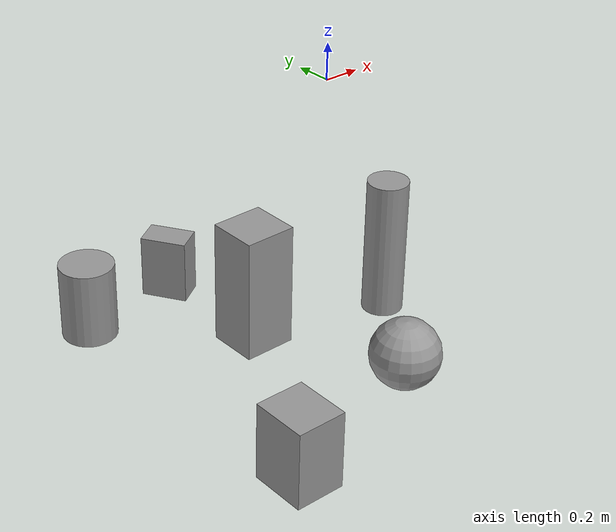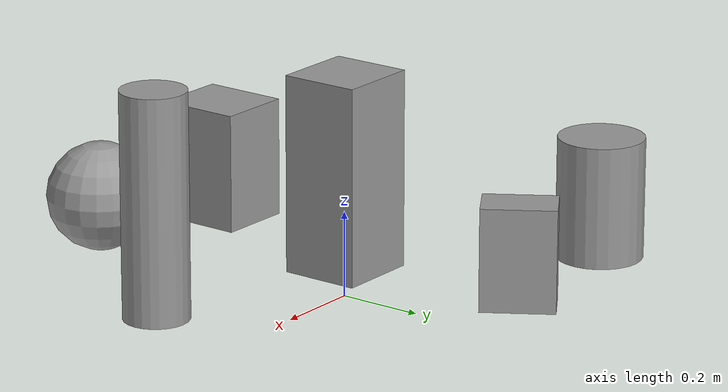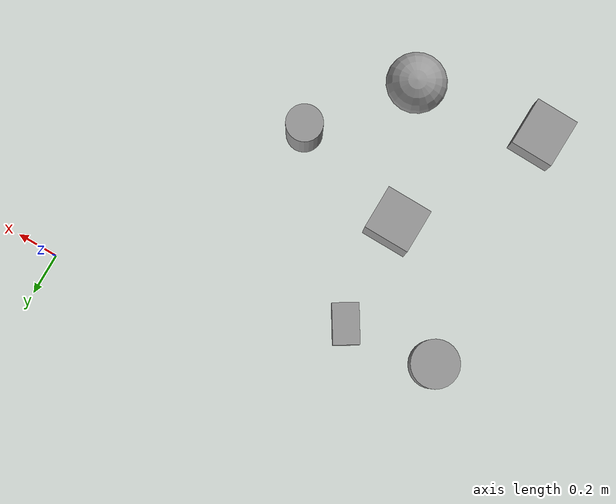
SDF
<?xml version='1.0'?>
<sdf version='1.7'>
  <model name='obstacles'>
    <link name='link'>
      <inertial>
        <mass>1</mass>
        <inertia>
          <ixx>0.166667</ixx>
          <ixy>0</ixy>
          <ixz>0</ixz>
          <iyy>0.166667</iyy>
          <iyz>0</iyz>
          <izz>0.166667</izz>
        </inertia>
        <pose>0 0 0 0 -0 0</pose>
      </inertial>
      <self_collide>0</self_collide>
      <enable_wind>0</enable_wind>
      <kinematic>0</kinematic>
      <pose>-1.33179 -0.434126 -0.357736 0 -0 0.564849</pose>
      <gravity>1</gravity>
      <visual name='visual'>
        <geometry>
          <box>
            <size>0.130992 0.203212 0.284528</size>
          </box>
        </geometry>
        <material>
          <script>
            <name>Gazebo/Grey</name>
            <uri>file://media/materials/scripts/gazebo.material</uri>
          </script>
          <shader type='pixel'>
            <normal_map>__default__</normal_map>
          </shader>
          <ambient>0.3 0.3 0.3 1</ambient>
          <diffuse>0.7 0.7 0.7 1</diffuse>
          <specular>0.01 0.01 0.01 1</specular>
          <emissive>0 0 0 1</emissive>
        </material>
        <pose>0 0 0 0 -0 0</pose>
        <transparency>0</transparency>
        <cast_shadows>1</cast_shadows>
      </visual>
      <collision name='collision'>
        <laser_retro>0</laser_retro>
        <max_contacts>10</max_contacts>
        <pose>0 0 0 0 -0 0</pose>
        <geometry>
          <box>
            <size>0.130992 0.203212 0.284528</size>
          </box>
        </geometry>
        <surface>
          <friction>
            <ode>
              <mu>1</mu>
              <mu2>1</mu2>
              <fdir1>0 0 0</fdir1>
              <slip1>0</slip1>
              <slip2>0</slip2>
            </ode>
            <torsional>
              <coefficient>1</coefficient>
              <patch_radius>0</patch_radius>
              <surface_radius>0</surface_radius>
              <use_patch_radius>1</use_patch_radius>
              <ode>
                <slip>0</slip>
              </ode>
            </torsional>
          </friction>
          <bounce>
            <restitution_coefficient>0</restitution_coefficient>
            <threshold>1e+06</threshold>
          </bounce>
          <contact>
            <collide_without_contact>0</collide_without_contact>
            <collide_without_contact_bitmask>1</collide_without_contact_bitmask>
            <collide_bitmask>1</collide_bitmask>
            <ode>
              <soft_cfm>0</soft_cfm>
              <soft_erp>0.2</soft_erp>
              <kp>1e+13</kp>
              <kd>1</kd>
              <max_vel>0.01</max_vel>
              <min_depth>0</min_depth>
            </ode>
            <bullet>
              <split_impulse>1</split_impulse>
              <split_impulse_penetration_threshold>-0.01</split_impulse_penetration_threshold>
              <soft_cfm>0</soft_cfm>
              <soft_erp>0.2</soft_erp>
              <kp>1e+13</kp>
              <kd>1</kd>
            </bullet>
          </contact>
        </surface>
      </collision>
    </link>
    <link name='link_2'>
      <inertial>
        <mass>1</mass>
        <inertia>
          <ixx>0.145833</ixx>
          <ixy>0</ixy>
          <ixz>0</ixz>
          <iyy>0.145833</iyy>
          <iyz>0</iyz>
          <izz>0.125</izz>
        </inertia>
        <pose>0 0 0 0 -0 0</pose>
      </inertial>
      <pose>-1.79426 -0.486175 -0.33 0 -0 0</pose>
      <gravity>1</gravity>
      <self_collide>0</self_collide>
      <kinematic>0</kinematic>
      <enable_wind>0</enable_wind>
      <visual name='visual'>
        <pose>0 0 0 0 -0 0</pose>
        <geometry>
          <cylinder>
            <radius>0.12</radius>
            <length>0.34</length>
          </cylinder>
        </geometry>
        <material>
          <lighting>1</lighting>
          <script>
            <uri>file://media/materials/scripts/gazebo.material</uri>
            <name>Gazebo/Grey</name>
          </script>
          <shader type='pixel'>
            <normal_map>__default__</normal_map>
          </shader>
          <ambient>0.3 0.3 0.3 1</ambient>
          <diffuse>0.7 0.7 0.7 1</diffuse>
          <specular>0.01 0.01 0.01 1</specular>
          <emissive>0 0 0 1</emissive>
        </material>
        <transparency>0</transparency>
        <cast_shadows>1</cast_shadows>
      </visual>
      <collision name='collision'>
        <laser_retro>0</laser_retro>
        <max_contacts>10</max_contacts>
        <pose>0 0 0 0 -0 0</pose>
        <geometry>
          <cylinder>
            <radius>0.12</radius>
            <length>0.34</length>
          </cylinder>
        </geometry>
        <surface>
          <friction>
            <ode>
              <mu>1</mu>
              <mu2>1</mu2>
              <fdir1>0 0 0</fdir1>
              <slip1>0</slip1>
              <slip2>0</slip2>
            </ode>
            <torsional>
              <coefficient>1</coefficient>
              <patch_radius>0</patch_radius>
              <surface_radius>0</surface_radius>
              <use_patch_radius>1</use_patch_radius>
              <ode>
                <slip>0</slip>
              </ode>
            </torsional>
          </friction>
          <bounce>
            <restitution_coefficient>0</restitution_coefficient>
            <threshold>1e+06</threshold>
          </bounce>
          <contact>
            <collide_without_contact>0</collide_without_contact>
            <collide_without_contact_bitmask>1</collide_without_contact_bitmask>
            <collide_bitmask>1</collide_bitmask>
            <ode>
              <soft_cfm>0</soft_cfm>
              <soft_erp>0.2</soft_erp>
              <kp>1e+13</kp>
              <kd>1</kd>
              <max_vel>0.01</max_vel>
              <min_depth>0</min_depth>
            </ode>
            <bullet>
              <split_impulse>1</split_impulse>
              <split_impulse_penetration_threshold>-0.01</split_impulse_penetration_threshold>
              <soft_cfm>0</soft_cfm>
              <soft_erp>0.2</soft_erp>
              <kp>1e+13</kp>
              <kd>1</kd>
            </bullet>
          </contact>
        </surface>
      </collision>
    </link>
    <link name='link_3'>
      <inertial>
        <mass>1</mass>
        <inertia>
          <ixx>0.166667</ixx>
          <ixy>0</ixy>
          <ixz>0</ixz>
          <iyy>0.166667</iyy>
          <iyz>0</iyz>
          <izz>0.166667</izz>
        </inertia>
        <pose>0 0 0 0 -0 0</pose>
      </inertial>
      <pose>-1.28907 -0.972289 -0.224349 0 -0 0</pose>
      <gravity>1</gravity>
      <self_collide>0</self_collide>
      <kinematic>0</kinematic>
      <enable_wind>0</enable_wind>
      <visual name='visual'>
        <pose>0 0 0 0 -0 0</pose>
        <geometry>
          <box>
            <size>0.231874 0.221189 0.551301</size>
          </box>
        </geometry>
        <material>
          <lighting>1</lighting>
          <script>
            <uri>file://media/materials/scripts/gazebo.material</uri>
            <name>Gazebo/Grey</name>
          </script>
          <shader type='pixel'>
            <normal_map>__default__</normal_map>
          </shader>
          <ambient>0.3 0.3 0.3 1</ambient>
          <diffuse>0.7 0.7 0.7 1</diffuse>
          <specular>0.01 0.01 0.01 1</specular>
          <emissive>0 0 0 1</emissive>
        </material>
        <transparency>0</transparency>
        <cast_shadows>1</cast_shadows>
      </visual>
      <collision name='collision'>
        <laser_retro>0</laser_retro>
        <max_contacts>10</max_contacts>
        <pose>0 0 0 0 -0 0</pose>
        <geometry>
          <box>
            <size>0.231874 0.221189 0.551301</size>
          </box>
        </geometry>
        <surface>
          <friction>
            <ode>
              <mu>1</mu>
              <mu2>1</mu2>
              <fdir1>0 0 0</fdir1>
              <slip1>0</slip1>
              <slip2>0</slip2>
            </ode>
            <torsional>
              <coefficient>1</coefficient>
              <patch_radius>0</patch_radius>
              <surface_radius>0</surface_radius>
              <use_patch_radius>1</use_patch_radius>
              <ode>
                <slip>0</slip>
              </ode>
            </torsional>
          </friction>
          <bounce>
            <restitution_coefficient>0</restitution_coefficient>
            <threshold>1e+06</threshold>
          </bounce>
          <contact>
            <collide_without_contact>0</collide_without_contact>
            <collide_without_contact_bitmask>1</collide_without_contact_bitmask>
            <collide_bitmask>1</collide_bitmask>
            <ode>
              <soft_cfm>0</soft_cfm>
              <soft_erp>0.2</soft_erp>
              <kp>1e+13</kp>
              <kd>1</kd>
              <max_vel>0.01</max_vel>
              <min_depth>0</min_depth>
            </ode>
            <bullet>
              <split_impulse>1</split_impulse>
              <split_impulse_penetration_threshold>-0.01</split_impulse_penetration_threshold>
              <soft_cfm>0</soft_cfm>
              <soft_erp>0.2</soft_erp>
              <kp>1e+13</kp>
              <kd>1</kd>
            </bullet>
          </contact>
        </surface>
      </collision>
    </link>
    <link name='link_4'>
      <inertial>
        <mass>1</mass>
        <inertia>
          <ixx>0.145833</ixx>
          <ixy>0</ixy>
          <ixz>0</ixz>
          <iyy>0.145833</iyy>
          <iyz>0</iyz>
          <izz>0.125</izz>
        </inertia>
        <pose>0 0 0 0 -0 0</pose>
      </inertial>
      <pose>-0.683413 -1.1301 -0.19 0 -0 0</pose>
      <gravity>1</gravity>
      <self_collide>0</self_collide>
      <kinematic>0</kinematic>
      <enable_wind>0</enable_wind>
      <visual name='visual'>
        <pose>0 0 0 0 -0 0</pose>
        <geometry>
          <cylinder>
            <radius>0.09</radius>
            <length>0.62</length>
          </cylinder>
        </geometry>
        <material>
          <lighting>1</lighting>
          <script>
            <uri>file://media/materials/scripts/gazebo.material</uri>
            <name>Gazebo/Grey</name>
          </script>
          <shader type='pixel'>
            <normal_map>__default__</normal_map>
          </shader>
          <ambient>0.3 0.3 0.3 1</ambient>
          <diffuse>0.7 0.7 0.7 1</diffuse>
          <specular>0.01 0.01 0.01 1</specular>
          <emissive>0 0 0 1</emissive>
        </material>
        <transparency>0</transparency>
        <cast_shadows>1</cast_shadows>
      </visual>
      <collision name='collision'>
        <laser_retro>0</laser_retro>
        <max_contacts>10</max_contacts>
        <pose>0 0 0 0 -0 0</pose>
        <geometry>
          <cylinder>
            <radius>0.09</radius>
            <length>0.62</length>
          </cylinder>
        </geometry>
        <surface>
          <friction>
            <ode>
              <mu>1</mu>
              <mu2>1</mu2>
              <fdir1>0 0 0</fdir1>
              <slip1>0</slip1>
              <slip2>0</slip2>
            </ode>
            <torsional>
              <coefficient>1</coefficient>
              <patch_radius>0</patch_radius>
              <surface_radius>0</surface_radius>
              <use_patch_radius>1</use_patch_radius>
              <ode>
                <slip>0</slip>
              </ode>
            </torsional>
          </friction>
          <bounce>
            <restitution_coefficient>0</restitution_coefficient>
            <threshold>1e+06</threshold>
          </bounce>
          <contact>
            <collide_without_contact>0</collide_without_contact>
            <collide_without_contact_bitmask>1</collide_without_contact_bitmask>
            <collide_bitmask>1</collide_bitmask>
            <ode>
              <soft_cfm>0</soft_cfm>
              <soft_erp>0.2</soft_erp>
              <kp>1e+13</kp>
              <kd>1</kd>
              <max_vel>0.01</max_vel>
              <min_depth>0</min_depth>
            </ode>
            <bullet>
              <split_impulse>1</split_impulse>
              <split_impulse_penetration_threshold>-0.01</split_impulse_penetration_threshold>
              <soft_cfm>0</soft_cfm>
              <soft_erp>0.2</soft_erp>
              <kp>1e+13</kp>
              <kd>1</kd>
            </bullet>
          </contact>
        </surface>
      </collision>
    </link>
    <link name='link_5'>
      <inertial>
        <mass>1</mass>
        <inertia>
          <ixx>0.1</ixx>
          <ixy>0</ixy>
          <ixz>0</ixz>
          <iyy>0.1</iyy>
          <iyz>0</iyz>
          <izz>0.1</izz>
        </inertia>
        <pose>0 0 0 0 -0 0</pose>
      </inertial>
      <pose>-1.02848 -1.61152 -0.35 0 -0 0</pose>
      <gravity>1</gravity>
      <self_collide>0</self_collide>
      <kinematic>0</kinematic>
      <enable_wind>0</enable_wind>
      <visual name='visual'>
        <pose>0 0 0 0 -0 0</pose>
        <geometry>
          <sphere>
            <radius>0.15</radius>
          </sphere>
        </geometry>
        <material>
          <lighting>1</lighting>
          <script>
            <uri>file://media/materials/scripts/gazebo.material</uri>
            <name>Gazebo/Grey</name>
          </script>
          <shader type='pixel'>
            <normal_map>__default__</normal_map>
          </shader>
          <ambient>0.3 0.3 0.3 1</ambient>
          <diffuse>0.7 0.7 0.7 1</diffuse>
          <specular>0.01 0.01 0.01 1</specular>
          <emissive>0 0 0 1</emissive>
        </material>
        <transparency>0</transparency>
        <cast_shadows>1</cast_shadows>
      </visual>
      <collision name='collision'>
        <laser_retro>0</laser_retro>
        <max_contacts>10</max_contacts>
        <pose>0 0 0 0 -0 0</pose>
        <geometry>
          <sphere>
            <radius>0.15</radius>
          </sphere>
        </geometry>
        <surface>
          <friction>
            <ode>
              <mu>1</mu>
              <mu2>1</mu2>
              <fdir1>0 0 0</fdir1>
              <slip1>0</slip1>
              <slip2>0</slip2>
            </ode>
            <torsional>
              <coefficient>1</coefficient>
              <patch_radius>0</patch_radius>
              <surface_radius>0</surface_radius>
              <use_patch_radius>1</use_patch_radius>
              <ode>
                <slip>0</slip>
              </ode>
            </torsional>
          </friction>
          <bounce>
            <restitution_coefficient>0</restitution_coefficient>
            <threshold>1e+06</threshold>
          </bounce>
          <contact>
            <collide_without_contact>0</collide_without_contact>
            <collide_without_contact_bitmask>1</collide_without_contact_bitmask>
            <collide_bitmask>1</collide_bitmask>
            <ode>
              <soft_cfm>0</soft_cfm>
              <soft_erp>0.2</soft_erp>
              <kp>1e+13</kp>
              <kd>1</kd>
              <max_vel>0.01</max_vel>
              <min_depth>0</min_depth>
            </ode>
            <bullet>
              <split_impulse>1</split_impulse>
              <split_impulse_penetration_threshold>-0.01</split_impulse_penetration_threshold>
              <soft_cfm>0</soft_cfm>
              <soft_erp>0.2</soft_erp>
              <kp>1e+13</kp>
              <kd>1</kd>
            </bullet>
          </contact>
        </surface>
      </collision>
    </link>
    <link name='link_6'>
      <inertial>
        <mass>1</mass>
        <inertia>
          <ixx>0.166667</ixx>
          <ixy>0</ixy>
          <ixz>0</ixz>
          <iyy>0.166667</iyy>
          <iyz>0</iyz>
          <izz>0.166667</izz>
        </inertia>
        <pose>0 0 0 0 -0 0</pose>
      </inertial>
      <pose>-1.67923 -1.71215 -0.4268 0 -0 1.56162</pose>
      <gravity>1</gravity>
      <self_collide>0</self_collide>
      <kinematic>0</kinematic>
      <enable_wind>0</enable_wind>
      <visual name='visual'>
        <pose>0 0 0 0 -0 0</pose>
        <geometry>
          <box>
            <size>0.245846 0.219412 0.346399</size>
          </box>
        </geometry>
        <material>
          <lighting>1</lighting>
          <script>
            <uri>file://media/materials/scripts/gazebo.material</uri>
            <name>Gazebo/Grey</name>
          </script>
          <shader type='pixel'>
            <normal_map>__default__</normal_map>
          </shader>
          <ambient>0.3 0.3 0.3 1</ambient>
          <diffuse>0.7 0.7 0.7 1</diffuse>
          <specular>0.01 0.01 0.01 1</specular>
          <emissive>0 0 0 1</emissive>
        </material>
        <transparency>0</transparency>
        <cast_shadows>1</cast_shadows>
      </visual>
      <collision name='collision'>
        <laser_retro>0</laser_retro>
        <max_contacts>10</max_contacts>
        <pose>0 0 0 0 -0 0</pose>
        <geometry>
          <box>
            <size>0.245846 0.219412 0.346399</size>
          </box>
        </geometry>
        <surface>
          <friction>
            <ode>
              <mu>1</mu>
              <mu2>1</mu2>
              <fdir1>0 0 0</fdir1>
              <slip1>0</slip1>
              <slip2>0</slip2>
            </ode>
            <torsional>
              <coefficient>1</coefficient>
              <patch_radius>0</patch_radius>
              <surface_radius>0</surface_radius>
              <use_patch_radius>1</use_patch_radius>
              <ode>
                <slip>0</slip>
              </ode>
            </torsional>
          </friction>
          <bounce>
            <restitution_coefficient>0</restitution_coefficient>
            <threshold>1e+06</threshold>
          </bounce>
          <contact>
            <collide_without_contact>0</collide_without_contact>
            <collide_without_contact_bitmask>1</collide_without_contact_bitmask>
            <collide_bitmask>1</collide_bitmask>
            <ode>
              <soft_cfm>0</soft_cfm>
              <soft_erp>0.2</soft_erp>
              <kp>1e+13</kp>
              <kd>1</kd>
              <max_vel>0.01</max_vel>
              <min_depth>0</min_depth>
            </ode>
            <bullet>
              <split_impulse>1</split_impulse>
              <split_impulse_penetration_threshold>-0.01</split_impulse_penetration_threshold>
              <soft_cfm>0</soft_cfm>
              <soft_erp>0.2</soft_erp>
              <kp>1e+13</kp>
              <kd>1</kd>
            </bullet>
          </contact>
        </surface>
      </collision>
    </link>
    <static>0</static>
    <allow_auto_disable>1</allow_auto_disable>
  </model>
</sdf>
